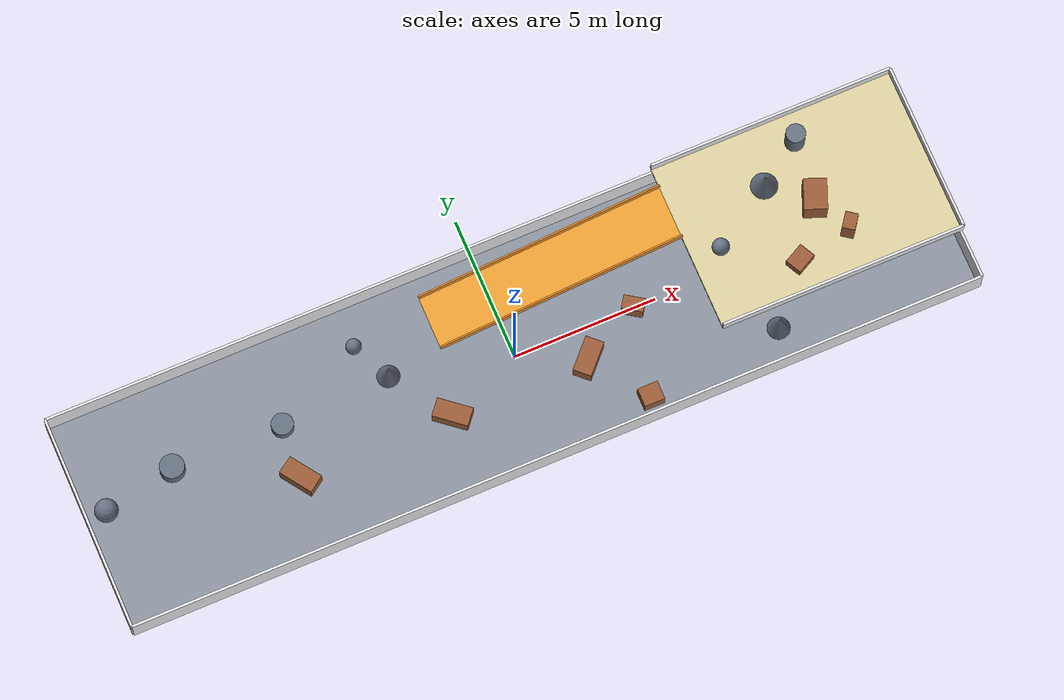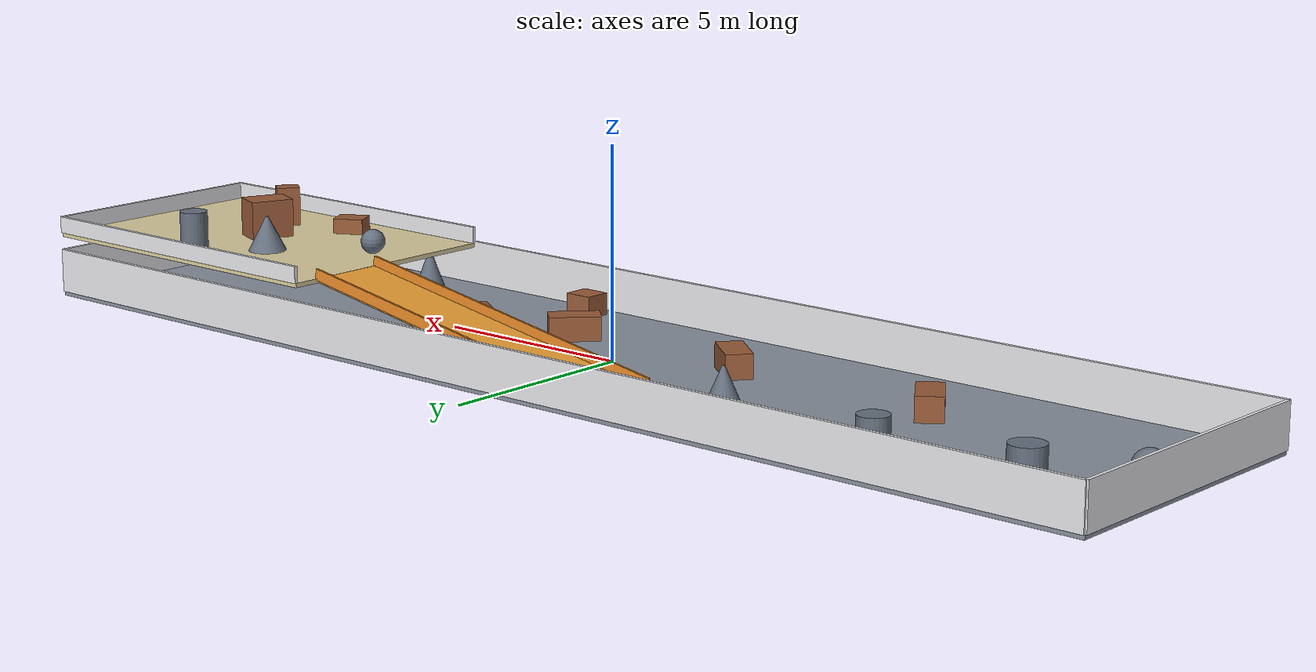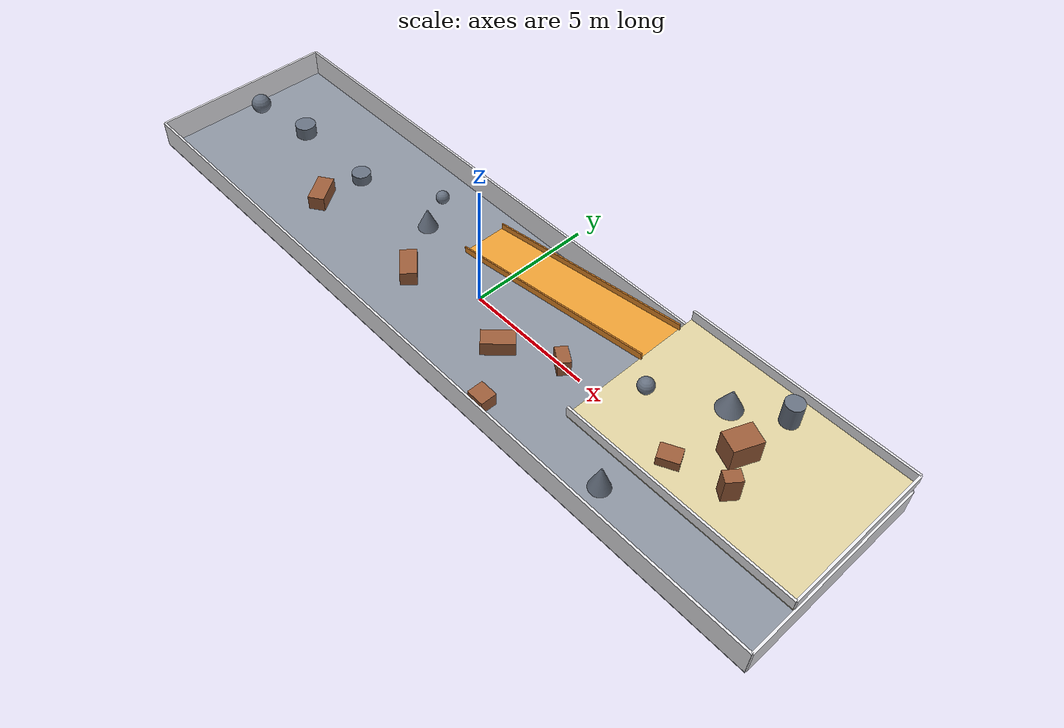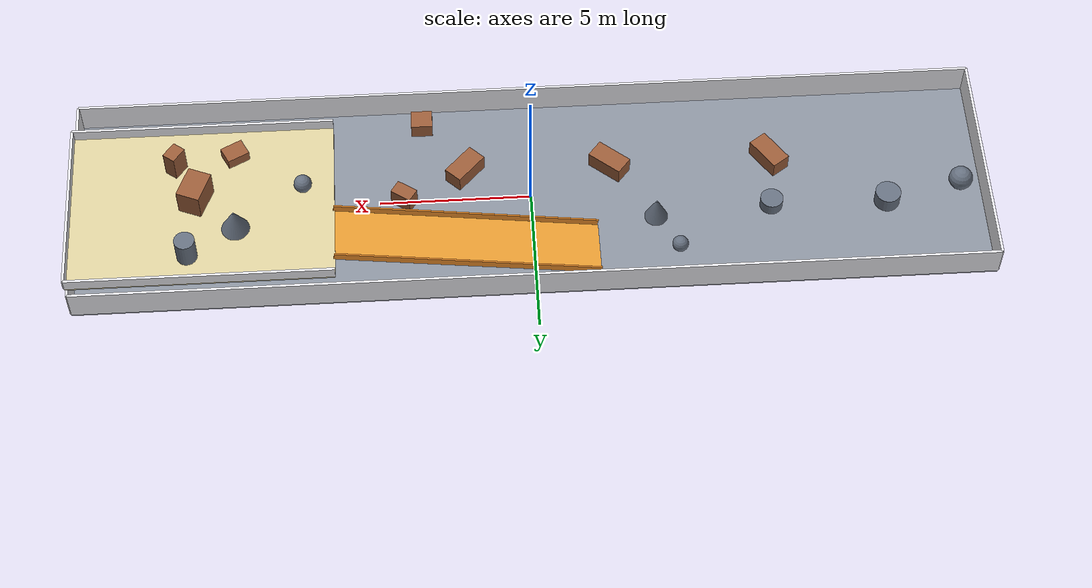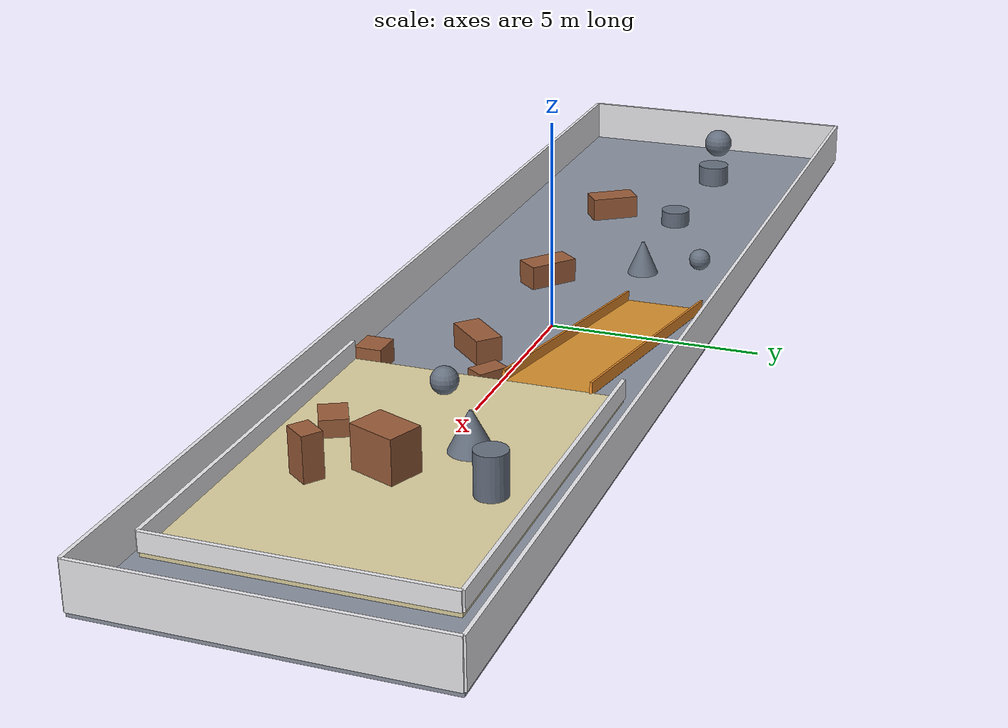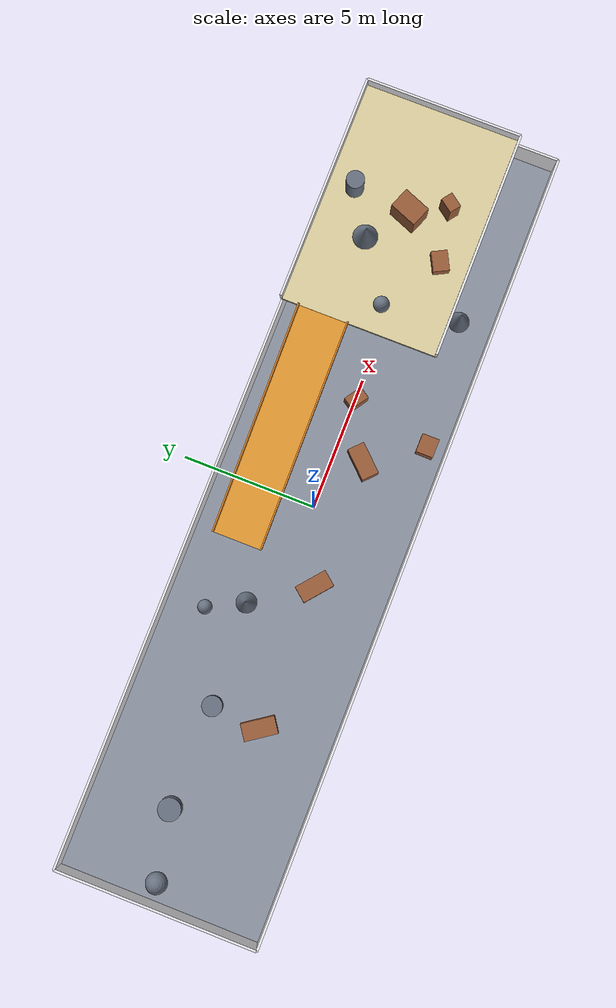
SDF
<?xml version='1.0' encoding='utf-8'?>
<sdf version="1.7">
  <world name="floor_2">
    <gravity>0 0 -9.8</gravity>
    <plugin name="gazebo_ros_state" filename="libgazebo_ros_state.so">
      <ros>
        <namespace>/gazebo</namespace>
      </ros>
    </plugin>
    <physics name="ode_physics" type="ode">
      <max_step_size>0.001</max_step_size>
      <real_time_factor>1</real_time_factor>
      <real_time_update_rate>1000</real_time_update_rate>
      <ode>
        <solver>
          <type>quick</type>
          <iters>150</iters>
          <sor>1.3</sor>
        </solver>
        <constraints>
          <cfm>0</cfm>
          <erp>0.2</erp>
          <contact_max_correcting_vel>0.2</contact_max_correcting_vel>
          <contact_surface_layer>0.001</contact_surface_layer>
        </constraints>
      </ode>
    </physics>
    <light name="sun" type="directional">
      <pose>0 0 28 0 0 0</pose>
      <diffuse>0.92 0.91 0.88 1</diffuse>
      <specular>0.18 0.18 0.16 1</specular>
      <direction>-0.35 -0.28 -0.9</direction>
      <cast_shadows>true</cast_shadows>
    </light>
    <light name="fill" type="point">
      <pose>0 0 4.5 0 0 0</pose>
      <diffuse>0.45 0.48 0.52 1</diffuse>
      <specular>0.02 0.02 0.02 1</specular>
      <cast_shadows>false</cast_shadows>
      <attenuation>
        <range>80</range>
        <constant>0.5</constant>
        <linear>0.02</linear>
      </attenuation>
    </light>
    <scene>
      <ambient>0.48 0.49 0.53 1</ambient>
      <background>0.72 0.77 0.84 1</background>
    </scene>
    <gui fullscreen="false">
      <camera name="user_camera">
        <pose>21 -6.75 25.5 0 0.65 2.2</pose>
        <view_controller>orbit</view_controller>
      </camera>
    </gui>
    <model name="floor_2_structure">
      <static>true</static>
      <link name="structure">
        <collision name="lower_collision">
          <pose>0 0 -0.0535714286 0 0 0</pose>
          <geometry>
            <box>
              <size>30 7.5 0.107142857</size>
            </box>
          </geometry>
          <max_contacts>40</max_contacts>
          <surface>
            <friction>
              <ode>
                <mu>2</mu>
                <mu2>2</mu2>
              </ode>
            </friction>
            <contact>
              <ode>
                <kp>1e7</kp>
                <kd>1000</kd>
                <max_vel>0.1</max_vel>
                <min_depth>0.001</min_depth>
              </ode>
            </contact>
          </surface>
        </collision>
        <visual name="lower_visual">
          <pose>0 0 -0.0535714286 0 0 0</pose>
          <geometry>
            <box>
              <size>30 7.5 0.107142857</size>
            </box>
          </geometry>
          <material>
            <ambient>0.54 0.57 0.62 1</ambient>
            <diffuse>0.54 0.57 0.62 1</diffuse>
          </material>
        </visual>
        <collision name="upper_collision">
          <pose>10.7142857 0.803571429 1.44642857 0 0 0</pose>
          <geometry>
            <box>
              <size>8.57142857 5.89285714 0.107142857</size>
            </box>
          </geometry>
          <max_contacts>40</max_contacts>
          <surface>
            <friction>
              <ode>
                <mu>2</mu>
                <mu2>2</mu2>
              </ode>
            </friction>
            <contact>
              <ode>
                <kp>1e7</kp>
                <kd>1000</kd>
                <max_vel>0.1</max_vel>
                <min_depth>0.001</min_depth>
              </ode>
            </contact>
          </surface>
        </collision>
        <visual name="upper_visual">
          <pose>10.7142857 0.803571429 1.44642857 0 0 0</pose>
          <geometry>
            <box>
              <size>8.57142857 5.89285714 0.107142857</size>
            </box>
          </geometry>
          <material>
            <ambient>0.86 0.81 0.62 1</ambient>
            <diffuse>0.86 0.81 0.62 1</diffuse>
          </material>
        </visual>
        <collision name="ramp_collision">
          <pose>2.16453607 2.14285714 0.702503069 0 -0.172716646 0</pose>
          <geometry>
            <box>
              <size>8.72807475 1.8 0.0964285714</size>
            </box>
          </geometry>
          <max_contacts>40</max_contacts>
          <surface>
            <friction>
              <ode>
                <mu>2</mu>
                <mu2>2</mu2>
              </ode>
            </friction>
            <contact>
              <ode>
                <kp>1e7</kp>
                <kd>1000</kd>
                <max_vel>0.1</max_vel>
                <min_depth>0.001</min_depth>
              </ode>
            </contact>
          </surface>
        </collision>
        <visual name="ramp_visual">
          <pose>2.16453607 2.14285714 0.702503069 0 -0.172716646 0</pose>
          <geometry>
            <box>
              <size>8.72807475 1.8 0.0964285714</size>
            </box>
          </geometry>
          <material>
            <ambient>0.92 0.62 0.20 1</ambient>
            <diffuse>0.92 0.62 0.20 1</diffuse>
          </material>
        </visual>
        <collision name="ramp_rail_-1_collision">
          <pose>2.16453607 1.21071429 0.852503069 0 -0.172716646 0</pose>
          <geometry>
            <box>
              <size>8.72807475 0.0535714286 0.267857143</size>
            </box>
          </geometry>
          <max_contacts>40</max_contacts>
          <surface>
            <friction>
              <ode>
                <mu>2</mu>
                <mu2>2</mu2>
              </ode>
            </friction>
            <contact>
              <ode>
                <kp>1e7</kp>
                <kd>1000</kd>
                <max_vel>0.1</max_vel>
                <min_depth>0.001</min_depth>
              </ode>
            </contact>
          </surface>
        </collision>
        <visual name="ramp_rail_-1_visual">
          <pose>2.16453607 1.21071429 0.852503069 0 -0.172716646 0</pose>
          <geometry>
            <box>
              <size>8.72807475 0.0535714286 0.267857143</size>
            </box>
          </geometry>
          <material>
            <ambient>0.92 0.55 0.16 1</ambient>
            <diffuse>0.92 0.55 0.16 1</diffuse>
          </material>
        </visual>
        <collision name="ramp_rail_1_collision">
          <pose>2.16453607 3.075 0.852503069 0 -0.172716646 0</pose>
          <geometry>
            <box>
              <size>8.72807475 0.0535714286 0.267857143</size>
            </box>
          </geometry>
          <max_contacts>40</max_contacts>
          <surface>
            <friction>
              <ode>
                <mu>2</mu>
                <mu2>2</mu2>
              </ode>
            </friction>
            <contact>
              <ode>
                <kp>1e7</kp>
                <kd>1000</kd>
                <max_vel>0.1</max_vel>
                <min_depth>0.001</min_depth>
              </ode>
            </contact>
          </surface>
        </collision>
        <visual name="ramp_rail_1_visual">
          <pose>2.16453607 3.075 0.852503069 0 -0.172716646 0</pose>
          <geometry>
            <box>
              <size>8.72807475 0.0535714286 0.267857143</size>
            </box>
          </geometry>
          <material>
            <ambient>0.92 0.55 0.16 1</ambient>
            <diffuse>0.92 0.55 0.16 1</diffuse>
          </material>
        </visual>
        <collision name="lower_rack_0_collision">
          <pose>-8.03571429 -1.07142857 0.294642857 0 0 -0.965208292</pose>
          <geometry>
            <box>
              <size>1.23214286 0.642857143 0.589285714</size>
            </box>
          </geometry>
          <max_contacts>40</max_contacts>
          <surface>
            <friction>
              <ode>
                <mu>2</mu>
                <mu2>2</mu2>
              </ode>
            </friction>
            <contact>
              <ode>
                <kp>1e7</kp>
                <kd>1000</kd>
                <max_vel>0.1</max_vel>
                <min_depth>0.001</min_depth>
              </ode>
            </contact>
          </surface>
        </collision>
        <visual name="lower_rack_0_visual">
          <pose>-8.03571429 -1.07142857 0.294642857 0 0 -0.965208292</pose>
          <geometry>
            <box>
              <size>1.23214286 0.642857143 0.589285714</size>
            </box>
          </geometry>
          <material>
            <ambient>0.60 0.36 0.22 1</ambient>
            <diffuse>0.60 0.36 0.22 1</diffuse>
          </material>
        </visual>
        <collision name="lower_rack_1_collision">
          <pose>-2.67857143 -1.07142857 0.294642857 0 0 -0.688890842</pose>
          <geometry>
            <box>
              <size>1.23214286 0.642857143 0.589285714</size>
            </box>
          </geometry>
          <max_contacts>40</max_contacts>
          <surface>
            <friction>
              <ode>
                <mu>2</mu>
                <mu2>2</mu2>
              </ode>
            </friction>
            <contact>
              <ode>
                <kp>1e7</kp>
                <kd>1000</kd>
                <max_vel>0.1</max_vel>
                <min_depth>0.001</min_depth>
              </ode>
            </contact>
          </surface>
        </collision>
        <visual name="lower_rack_1_visual">
          <pose>-2.67857143 -1.07142857 0.294642857 0 0 -0.688890842</pose>
          <geometry>
            <box>
              <size>1.23214286 0.642857143 0.589285714</size>
            </box>
          </geometry>
          <material>
            <ambient>0.60 0.36 0.22 1</ambient>
            <diffuse>0.60 0.36 0.22 1</diffuse>
          </material>
        </visual>
        <collision name="lower_rack_2_collision">
          <pose>2.14285714 -1.07142857 0.294642857 0 0 0.813963432</pose>
          <geometry>
            <box>
              <size>1.23214286 0.642857143 0.589285714</size>
            </box>
          </geometry>
          <max_contacts>40</max_contacts>
          <surface>
            <friction>
              <ode>
                <mu>2</mu>
                <mu2>2</mu2>
              </ode>
            </friction>
            <contact>
              <ode>
                <kp>1e7</kp>
                <kd>1000</kd>
                <max_vel>0.1</max_vel>
                <min_depth>0.001</min_depth>
              </ode>
            </contact>
          </surface>
        </collision>
        <visual name="lower_rack_2_visual">
          <pose>2.14285714 -1.07142857 0.294642857 0 0 0.813963432</pose>
          <geometry>
            <box>
              <size>1.23214286 0.642857143 0.589285714</size>
            </box>
          </geometry>
          <material>
            <ambient>0.60 0.36 0.22 1</ambient>
            <diffuse>0.60 0.36 0.22 1</diffuse>
          </material>
        </visual>
        <collision name="upper_crate_collision">
          <pose>9.64285714 -1.07142857 1.6875 0 0 0.476315756</pose>
          <geometry>
            <box>
              <size>0.75 0.589285714 0.375</size>
            </box>
          </geometry>
          <max_contacts>40</max_contacts>
          <surface>
            <friction>
              <ode>
                <mu>2</mu>
                <mu2>2</mu2>
              </ode>
            </friction>
            <contact>
              <ode>
                <kp>1e7</kp>
                <kd>1000</kd>
                <max_vel>0.1</max_vel>
                <min_depth>0.001</min_depth>
              </ode>
            </contact>
          </surface>
        </collision>
        <visual name="upper_crate_visual">
          <pose>9.64285714 -1.07142857 1.6875 0 0 0.476315756</pose>
          <geometry>
            <box>
              <size>0.75 0.589285714 0.375</size>
            </box>
          </geometry>
          <material>
            <ambient>0.60 0.36 0.22 1</ambient>
            <diffuse>0.60 0.36 0.22 1</diffuse>
          </material>
        </visual>
        <collision name="upper_rail_0_collision">
          <pose>10.7142857 -2.14285714 1.70089286 0 0 0</pose>
          <geometry>
            <box>
              <size>8.57142857 0.0857142857 0.401785714</size>
            </box>
          </geometry>
          <max_contacts>40</max_contacts>
          <surface>
            <friction>
              <ode>
                <mu>2</mu>
                <mu2>2</mu2>
              </ode>
            </friction>
            <contact>
              <ode>
                <kp>1e7</kp>
                <kd>1000</kd>
                <max_vel>0.1</max_vel>
                <min_depth>0.001</min_depth>
              </ode>
            </contact>
          </surface>
        </collision>
        <visual name="upper_rail_0_visual">
          <pose>10.7142857 -2.14285714 1.70089286 0 0 0</pose>
          <geometry>
            <box>
              <size>8.57142857 0.0857142857 0.401785714</size>
            </box>
          </geometry>
          <material>
            <ambient>0.91 0.91 0.93 1</ambient>
            <diffuse>0.91 0.91 0.93 1</diffuse>
          </material>
        </visual>
        <collision name="upper_rail_1_collision">
          <pose>15 0.803571429 1.70089286 0 0 1.57079633</pose>
          <geometry>
            <box>
              <size>5.89285714 0.0857142857 0.401785714</size>
            </box>
          </geometry>
          <max_contacts>40</max_contacts>
          <surface>
            <friction>
              <ode>
                <mu>2</mu>
                <mu2>2</mu2>
              </ode>
            </friction>
            <contact>
              <ode>
                <kp>1e7</kp>
                <kd>1000</kd>
                <max_vel>0.1</max_vel>
                <min_depth>0.001</min_depth>
              </ode>
            </contact>
          </surface>
        </collision>
        <visual name="upper_rail_1_visual">
          <pose>15 0.803571429 1.70089286 0 0 1.57079633</pose>
          <geometry>
            <box>
              <size>5.89285714 0.0857142857 0.401785714</size>
            </box>
          </geometry>
          <material>
            <ambient>0.91 0.91 0.93 1</ambient>
            <diffuse>0.91 0.91 0.93 1</diffuse>
          </material>
        </visual>
        <collision name="upper_rail_2_collision">
          <pose>10.7142857 3.75 1.70089286 0 0 3.14159265</pose>
          <geometry>
            <box>
              <size>8.57142857 0.0857142857 0.401785714</size>
            </box>
          </geometry>
          <max_contacts>40</max_contacts>
          <surface>
            <friction>
              <ode>
                <mu>2</mu>
                <mu2>2</mu2>
              </ode>
            </friction>
            <contact>
              <ode>
                <kp>1e7</kp>
                <kd>1000</kd>
                <max_vel>0.1</max_vel>
                <min_depth>0.001</min_depth>
              </ode>
            </contact>
          </surface>
        </collision>
        <visual name="upper_rail_2_visual">
          <pose>10.7142857 3.75 1.70089286 0 0 3.14159265</pose>
          <geometry>
            <box>
              <size>8.57142857 0.0857142857 0.401785714</size>
            </box>
          </geometry>
          <material>
            <ambient>0.91 0.91 0.93 1</ambient>
            <diffuse>0.91 0.91 0.93 1</diffuse>
          </material>
        </visual>
        <collision name="boundary_0_collision">
          <pose>0 -3.75 0.535714286 0 0 0</pose>
          <geometry>
            <box>
              <size>30 0.0857142857 1.07142857</size>
            </box>
          </geometry>
          <max_contacts>40</max_contacts>
          <surface>
            <friction>
              <ode>
                <mu>2</mu>
                <mu2>2</mu2>
              </ode>
            </friction>
            <contact>
              <ode>
                <kp>1e7</kp>
                <kd>1000</kd>
                <max_vel>0.1</max_vel>
                <min_depth>0.001</min_depth>
              </ode>
            </contact>
          </surface>
        </collision>
        <visual name="boundary_0_visual">
          <pose>0 -3.75 0.535714286 0 0 0</pose>
          <geometry>
            <box>
              <size>30 0.0857142857 1.07142857</size>
            </box>
          </geometry>
          <material>
            <ambient>0.91 0.91 0.93 1</ambient>
            <diffuse>0.91 0.91 0.93 1</diffuse>
          </material>
        </visual>
        <collision name="boundary_1_collision">
          <pose>15 0 0.535714286 0 0 1.57079633</pose>
          <geometry>
            <box>
              <size>7.5 0.0857142857 1.07142857</size>
            </box>
          </geometry>
          <max_contacts>40</max_contacts>
          <surface>
            <friction>
              <ode>
                <mu>2</mu>
                <mu2>2</mu2>
              </ode>
            </friction>
            <contact>
              <ode>
                <kp>1e7</kp>
                <kd>1000</kd>
                <max_vel>0.1</max_vel>
                <min_depth>0.001</min_depth>
              </ode>
            </contact>
          </surface>
        </collision>
        <visual name="boundary_1_visual">
          <pose>15 0 0.535714286 0 0 1.57079633</pose>
          <geometry>
            <box>
              <size>7.5 0.0857142857 1.07142857</size>
            </box>
          </geometry>
          <material>
            <ambient>0.91 0.91 0.93 1</ambient>
            <diffuse>0.91 0.91 0.93 1</diffuse>
          </material>
        </visual>
        <collision name="boundary_2_collision">
          <pose>0 3.75 0.535714286 0 0 3.14159265</pose>
          <geometry>
            <box>
              <size>30 0.0857142857 1.07142857</size>
            </box>
          </geometry>
          <max_contacts>40</max_contacts>
          <surface>
            <friction>
              <ode>
                <mu>2</mu>
                <mu2>2</mu2>
              </ode>
            </friction>
            <contact>
              <ode>
                <kp>1e7</kp>
                <kd>1000</kd>
                <max_vel>0.1</max_vel>
                <min_depth>0.001</min_depth>
              </ode>
            </contact>
          </surface>
        </collision>
        <visual name="boundary_2_visual">
          <pose>0 3.75 0.535714286 0 0 3.14159265</pose>
          <geometry>
            <box>
              <size>30 0.0857142857 1.07142857</size>
            </box>
          </geometry>
          <material>
            <ambient>0.91 0.91 0.93 1</ambient>
            <diffuse>0.91 0.91 0.93 1</diffuse>
          </material>
        </visual>
        <collision name="boundary_3_collision">
          <pose>-15 0 0.535714286 0 0 -1.57079633</pose>
          <geometry>
            <box>
              <size>7.5 0.0857142857 1.07142857</size>
            </box>
          </geometry>
          <max_contacts>40</max_contacts>
          <surface>
            <friction>
              <ode>
                <mu>2</mu>
                <mu2>2</mu2>
              </ode>
            </friction>
            <contact>
              <ode>
                <kp>1e7</kp>
                <kd>1000</kd>
                <max_vel>0.1</max_vel>
                <min_depth>0.001</min_depth>
              </ode>
            </contact>
          </surface>
        </collision>
        <visual name="boundary_3_visual">
          <pose>-15 0 0.535714286 0 0 -1.57079633</pose>
          <geometry>
            <box>
              <size>7.5 0.0857142857 1.07142857</size>
            </box>
          </geometry>
          <material>
            <ambient>0.91 0.91 0.93 1</ambient>
            <diffuse>0.91 0.91 0.93 1</diffuse>
          </material>
        </visual>
        <collision name="irregular_prop_0_collision">
          <pose>11.5595281 -0.692937159 1.97998737 0 0 -2.20747966</pose>
          <geometry>
            <box>
              <size>0.572834392 0.439753281 0.959974736</size>
            </box>
          </geometry>
          <max_contacts>40</max_contacts>
          <surface>
            <friction>
              <ode>
                <mu>2</mu>
                <mu2>2</mu2>
              </ode>
            </friction>
            <contact>
              <ode>
                <kp>1e7</kp>
                <kd>1000</kd>
                <max_vel>0.1</max_vel>
                <min_depth>0.001</min_depth>
              </ode>
            </contact>
          </surface>
        </collision>
        <visual name="irregular_prop_0_visual">
          <pose>11.5595281 -0.692937159 1.97998737 0 0 -2.20747966</pose>
          <geometry>
            <box>
              <size>0.572834392 0.439753281 0.959974736</size>
            </box>
          </geometry>
          <material>
            <ambient>0.60 0.36 0.22 1</ambient>
            <diffuse>0.60 0.36 0.22 1</diffuse>
          </material>
        </visual>
        <collision name="irregular_prop_1_collision">
          <pose>-11.771415 0.833944378 0.265333395 0 0 0.111394915</pose>
          <geometry>
            <cylinder>
              <radius>0.4194835926490552</radius>
              <length>0.5306667894314464</length>
            </cylinder>
          </geometry>
          <max_contacts>40</max_contacts>
          <surface>
            <friction>
              <ode>
                <mu>2</mu>
                <mu2>2</mu2>
              </ode>
            </friction>
            <contact>
              <ode>
                <kp>1e7</kp>
                <kd>1000</kd>
                <max_vel>0.1</max_vel>
                <min_depth>0.001</min_depth>
              </ode>
            </contact>
          </surface>
        </collision>
        <visual name="irregular_prop_1_visual">
          <pose>-11.771415 0.833944378 0.265333395 0 0 0.111394915</pose>
          <geometry>
            <cylinder>
              <radius>0.4194835926490552</radius>
              <length>0.5306667894314464</length>
            </cylinder>
          </geometry>
          <material>
            <ambient>0.40 0.44 0.50 1</ambient>
            <diffuse>0.40 0.44 0.50 1</diffuse>
          </material>
        </visual>
        <collision name="irregular_prop_2_collision">
          <pose>-14.2798833 0.322380829 0.397533165 0 0 -0.669544874</pose>
          <geometry>
            <sphere>
              <radius>0.3975331651948125</radius>
            </sphere>
          </geometry>
          <max_contacts>40</max_contacts>
          <surface>
            <friction>
              <ode>
                <mu>2</mu>
                <mu2>2</mu2>
              </ode>
            </friction>
            <contact>
              <ode>
                <kp>1e7</kp>
                <kd>1000</kd>
                <max_vel>0.1</max_vel>
                <min_depth>0.001</min_depth>
              </ode>
            </contact>
          </surface>
        </collision>
        <visual name="irregular_prop_2_visual">
          <pose>-14.2798833 0.322380829 0.397533165 0 0 -0.669544874</pose>
          <geometry>
            <sphere>
              <radius>0.3975331651948125</radius>
            </sphere>
          </geometry>
          <material>
            <ambient>0.40 0.44 0.50 1</ambient>
            <diffuse>0.40 0.44 0.50 1</diffuse>
          </material>
        </visual>
        <collision name="irregular_prop_3_collision">
          <pose>0 0 0 0 0 0</pose>
          <geometry>
            <mesh>
              <uri>3DModel/floor/surfaces/floor_2_irregular_prop_3.stl</uri>
            </mesh>
          </geometry>
          <max_contacts>40</max_contacts>
          <surface>
            <friction>
              <ode>
                <mu>8</mu>
                <mu2>8</mu2>
              </ode>
            </friction>
            <contact>
              <ode>
                <kp>1e7</kp>
                <kd>1000</kd>
                <max_vel>0.1</max_vel>
                <min_depth>0.001</min_depth>
              </ode>
            </contact>
          </surface>
        </collision>
        <visual name="irregular_prop_3_visual">
          <pose>0 0 0 0 0 0</pose>
          <geometry>
            <mesh>
              <uri>3DModel/floor/surfaces/floor_2_irregular_prop_3.stl</uri>
            </mesh>
          </geometry>
          <material>
            <ambient>0.40 0.44 0.50 1</ambient>
            <diffuse>0.40 0.44 0.50 1</diffuse>
          </material>
        </visual>
        <collision name="irregular_prop_4_collision">
          <pose>4.19396525 -0.0230885059 0.331397816 0 0 -0.590339698</pose>
          <geometry>
            <box>
              <size>0.731007339 0.473068221 0.662795632</size>
            </box>
          </geometry>
          <max_contacts>40</max_contacts>
          <surface>
            <friction>
              <ode>
                <mu>2</mu>
                <mu2>2</mu2>
              </ode>
            </friction>
            <contact>
              <ode>
                <kp>1e7</kp>
                <kd>1000</kd>
                <max_vel>0.1</max_vel>
                <min_depth>0.001</min_depth>
              </ode>
            </contact>
          </surface>
        </collision>
        <visual name="irregular_prop_4_visual">
          <pose>4.19396525 -0.0230885059 0.331397816 0 0 -0.590339698</pose>
          <geometry>
            <box>
              <size>0.731007339 0.473068221 0.662795632</size>
            </box>
          </geometry>
          <material>
            <ambient>0.60 0.36 0.22 1</ambient>
            <diffuse>0.60 0.36 0.22 1</diffuse>
          </material>
        </visual>
        <collision name="irregular_prop_5_collision">
          <pose>11.1458172 2.75368018 1.95540819 0 0 1.35476293</pose>
          <geometry>
            <cylinder>
              <radius>0.33314804432181777</radius>
              <length>0.9108163881225696</length>
            </cylinder>
          </geometry>
          <max_contacts>40</max_contacts>
          <surface>
            <friction>
              <ode>
                <mu>2</mu>
                <mu2>2</mu2>
              </ode>
            </friction>
            <contact>
              <ode>
                <kp>1e7</kp>
                <kd>1000</kd>
                <max_vel>0.1</max_vel>
                <min_depth>0.001</min_depth>
              </ode>
            </contact>
          </surface>
        </collision>
        <visual name="irregular_prop_5_visual">
          <pose>11.1458172 2.75368018 1.95540819 0 0 1.35476293</pose>
          <geometry>
            <cylinder>
              <radius>0.33314804432181777</radius>
              <length>0.9108163881225696</length>
            </cylinder>
          </geometry>
          <material>
            <ambient>0.40 0.44 0.50 1</ambient>
            <diffuse>0.40 0.44 0.50 1</diffuse>
          </material>
        </visual>
        <collision name="irregular_prop_6_collision">
          <pose>-4.76331385 2.32185769 0.266999518 0 0 1.37290259</pose>
          <geometry>
            <sphere>
              <radius>0.2669995184276213</radius>
            </sphere>
          </geometry>
          <max_contacts>40</max_contacts>
          <surface>
            <friction>
              <ode>
                <mu>2</mu>
                <mu2>2</mu2>
              </ode>
            </friction>
            <contact>
              <ode>
                <kp>1e7</kp>
                <kd>1000</kd>
                <max_vel>0.1</max_vel>
                <min_depth>0.001</min_depth>
              </ode>
            </contact>
          </surface>
        </collision>
        <visual name="irregular_prop_6_visual">
          <pose>-4.76331385 2.32185769 0.266999518 0 0 1.37290259</pose>
          <geometry>
            <sphere>
              <radius>0.2669995184276213</radius>
            </sphere>
          </geometry>
          <material>
            <ambient>0.40 0.44 0.50 1</ambient>
            <diffuse>0.40 0.44 0.50 1</diffuse>
          </material>
        </visual>
        <collision name="irregular_prop_7_collision">
          <pose>0 0 0 0 0 0</pose>
          <geometry>
            <mesh>
              <uri>3DModel/floor/surfaces/floor_2_irregular_prop_7.stl</uri>
            </mesh>
          </geometry>
          <max_contacts>40</max_contacts>
          <surface>
            <friction>
              <ode>
                <mu>8</mu>
                <mu2>8</mu2>
              </ode>
            </friction>
            <contact>
              <ode>
                <kp>1e7</kp>
                <kd>1000</kd>
                <max_vel>0.1</max_vel>
                <min_depth>0.001</min_depth>
              </ode>
            </contact>
          </surface>
        </collision>
        <visual name="irregular_prop_7_visual">
          <pose>0 0 0 0 0 0</pose>
          <geometry>
            <mesh>
              <uri>3DModel/floor/surfaces/floor_2_irregular_prop_7.stl</uri>
            </mesh>
          </geometry>
          <material>
            <ambient>0.40 0.44 0.50 1</ambient>
            <diffuse>0.40 0.44 0.50 1</diffuse>
          </material>
        </visual>
        <collision name="irregular_prop_8_collision">
          <pose>10.8935971 0.596067018 1.96903885 0 0 -1.95120665</pose>
          <geometry>
            <box>
              <size>1.06085696 0.779806783 0.938077694</size>
            </box>
          </geometry>
          <max_contacts>40</max_contacts>
          <surface>
            <friction>
              <ode>
                <mu>2</mu>
                <mu2>2</mu2>
              </ode>
            </friction>
            <contact>
              <ode>
                <kp>1e7</kp>
                <kd>1000</kd>
                <max_vel>0.1</max_vel>
                <min_depth>0.001</min_depth>
              </ode>
            </contact>
          </surface>
        </collision>
        <visual name="irregular_prop_8_visual">
          <pose>10.8935971 0.596067018 1.96903885 0 0 -1.95120665</pose>
          <geometry>
            <box>
              <size>1.06085696 0.779806783 0.938077694</size>
            </box>
          </geometry>
          <material>
            <ambient>0.60 0.36 0.22 1</ambient>
            <diffuse>0.60 0.36 0.22 1</diffuse>
          </material>
        </visual>
        <collision name="irregular_prop_9_collision">
          <pose>-7.92214002 0.77622624 0.203097476 0 0 2.52440951</pose>
          <geometry>
            <cylinder>
              <radius>0.37451221579107086</radius>
              <length>0.4061949513615424</length>
            </cylinder>
          </geometry>
          <max_contacts>40</max_contacts>
          <surface>
            <friction>
              <ode>
                <mu>2</mu>
                <mu2>2</mu2>
              </ode>
            </friction>
            <contact>
              <ode>
                <kp>1e7</kp>
                <kd>1000</kd>
                <max_vel>0.1</max_vel>
                <min_depth>0.001</min_depth>
              </ode>
            </contact>
          </surface>
        </collision>
        <visual name="irregular_prop_9_visual">
          <pose>-7.92214002 0.77622624 0.203097476 0 0 2.52440951</pose>
          <geometry>
            <cylinder>
              <radius>0.37451221579107086</radius>
              <length>0.4061949513615424</length>
            </cylinder>
          </geometry>
          <material>
            <ambient>0.40 0.44 0.50 1</ambient>
            <diffuse>0.40 0.44 0.50 1</diffuse>
          </material>
        </visual>
        <collision name="irregular_prop_10_collision">
          <pose>7.43055982 0.318648543 1.79539522 0 0 -0.53577489</pose>
          <geometry>
            <sphere>
              <radius>0.29539522429856163</radius>
            </sphere>
          </geometry>
          <max_contacts>40</max_contacts>
          <surface>
            <friction>
              <ode>
                <mu>2</mu>
                <mu2>2</mu2>
              </ode>
            </friction>
            <contact>
              <ode>
                <kp>1e7</kp>
                <kd>1000</kd>
                <max_vel>0.1</max_vel>
                <min_depth>0.001</min_depth>
              </ode>
            </contact>
          </surface>
        </collision>
        <visual name="irregular_prop_10_visual">
          <pose>7.43055982 0.318648543 1.79539522 0 0 -0.53577489</pose>
          <geometry>
            <sphere>
              <radius>0.29539522429856163</radius>
            </sphere>
          </geometry>
          <material>
            <ambient>0.40 0.44 0.50 1</ambient>
            <diffuse>0.40 0.44 0.50 1</diffuse>
          </material>
        </visual>
        <collision name="irregular_prop_11_collision">
          <pose>0 0 0 0 0 0</pose>
          <geometry>
            <mesh>
              <uri>3DModel/floor/surfaces/floor_2_irregular_prop_11.stl</uri>
            </mesh>
          </geometry>
          <max_contacts>40</max_contacts>
          <surface>
            <friction>
              <ode>
                <mu>8</mu>
                <mu2>8</mu2>
              </ode>
            </friction>
            <contact>
              <ode>
                <kp>1e7</kp>
                <kd>1000</kd>
                <max_vel>0.1</max_vel>
                <min_depth>0.001</min_depth>
              </ode>
            </contact>
          </surface>
        </collision>
        <visual name="irregular_prop_11_visual">
          <pose>0 0 0 0 0 0</pose>
          <geometry>
            <mesh>
              <uri>3DModel/floor/surfaces/floor_2_irregular_prop_11.stl</uri>
            </mesh>
          </geometry>
          <material>
            <ambient>0.40 0.44 0.50 1</ambient>
            <diffuse>0.40 0.44 0.50 1</diffuse>
          </material>
        </visual>
        <collision name="irregular_prop_12_collision">
          <pose>3.5218965 -3.03917372 0.26964643 0 0 1.56318515</pose>
          <geometry>
            <box>
              <size>0.643878934 0.706321365 0.539292859</size>
            </box>
          </geometry>
          <max_contacts>40</max_contacts>
          <surface>
            <friction>
              <ode>
                <mu>2</mu>
                <mu2>2</mu2>
              </ode>
            </friction>
            <contact>
              <ode>
                <kp>1e7</kp>
                <kd>1000</kd>
                <max_vel>0.1</max_vel>
                <min_depth>0.001</min_depth>
              </ode>
            </contact>
          </surface>
        </collision>
        <visual name="irregular_prop_12_visual">
          <pose>3.5218965 -3.03917372 0.26964643 0 0 1.56318515</pose>
          <geometry>
            <box>
              <size>0.643878934 0.706321365 0.539292859</size>
            </box>
          </geometry>
          <material>
            <ambient>0.60 0.36 0.22 1</ambient>
            <diffuse>0.60 0.36 0.22 1</diffuse>
          </material>
        </visual>
      </link>
    </model>
  </world>
</sdf>
